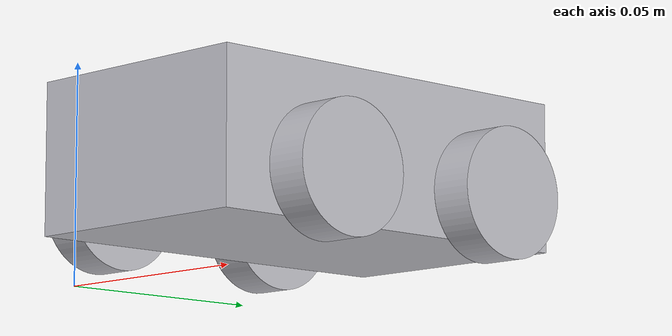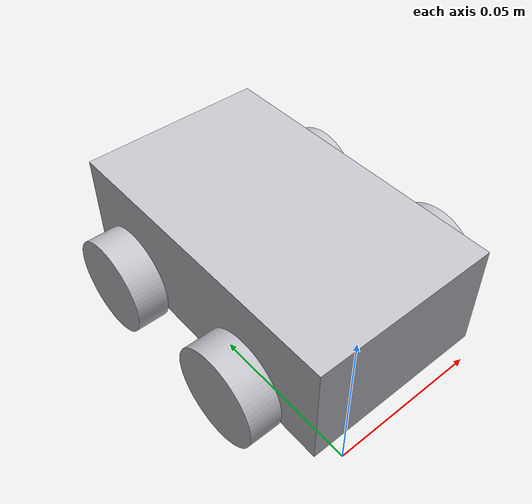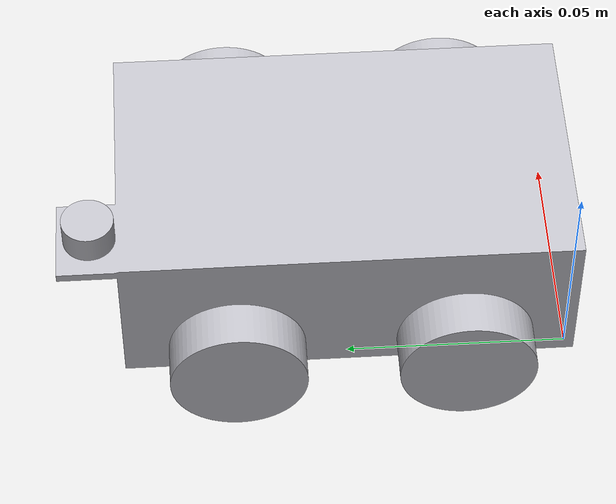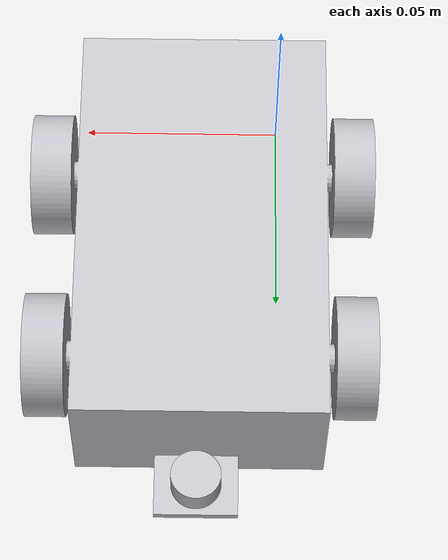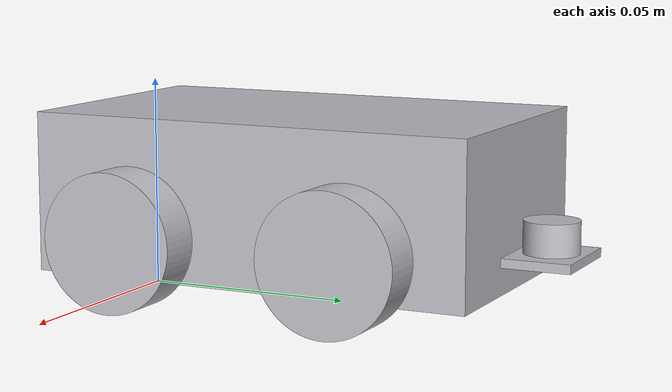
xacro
<?xml version="1.0" ?>
<robot name="AMR" xmlns:xacro="http://www.ros.org/wiki/xacro">

<xacro:include filename="$(find AMR_description)/urdf/materials.xacro" />
<xacro:include filename="$(find AMR_description)/urdf/AMR.trans" />
<xacro:include filename="$(find AMR_description)/urdf/AMR.gazebo" />
<link name="base_link">
  <inertial>
    <origin xyz="0.01897877889872416 0.0503794465577817 0.029670984969818247" rpy="0 0 0"/>
    <mass value="1.6562310340355082"/>
    <inertia ixx="0.00156" iyy="0.000667" izz="0.001889" ixy="-0.0" iyz="3e-06" ixz="0.0"/>
  </inertial>
  <visual>
    <origin xyz="0 0 0" rpy="0 0 0"/>
    <geometry>
      <mesh filename="package://AMR_description/meshes/base_link.stl" scale="0.001 0.001 0.001"/>
    </geometry>
    <material name="silver"/>
  </visual>
  <collision>
    <origin xyz="0 0 0" rpy="0 0 0"/>
    <geometry>
      <mesh filename="package://AMR_description/meshes/base_link.stl" scale="0.001 0.001 0.001"/>
    </geometry>
  </collision>
</link>

<link name="wheel_lf_1">
  <inertial>
    <origin xyz="0.004999938065343601 -7.229582901779885e-08 -4.7475483102785154e-07" rpy="0 0 0"/>
    <mass value="0.0554883802440297"/>
    <inertia ixx="6e-06" iyy="4e-06" izz="4e-06" ixy="0.0" iyz="0.0" ixz="0.0"/>
  </inertial>
  <visual>
    <origin xyz="-0.051477 -0.075216 -0.022215" rpy="0 0 0"/>
    <geometry>
      <mesh filename="package://AMR_description/meshes/wheel_lf_1.stl" scale="0.001 0.001 0.001"/>
    </geometry>
    <material name="silver"/>
  </visual>
  <collision>
    <origin xyz="-0.051477 -0.075216 -0.022215" rpy="0 0 0"/>
    <geometry>
      <mesh filename="package://AMR_description/meshes/wheel_lf_1.stl" scale="0.001 0.001 0.001"/>
    </geometry>
  </collision>
</link>

<link name="wheel_rf_1">
  <inertial>
    <origin xyz="-0.0050000619346564044 -7.229582901779885e-08 -4.74754831031321e-07" rpy="0 0 0"/>
    <mass value="0.05548838024402973"/>
    <inertia ixx="6e-06" iyy="4e-06" izz="4e-06" ixy="-0.0" iyz="0.0" ixz="-0.0"/>
  </inertial>
  <visual>
    <origin xyz="0.013523 -0.075216 -0.022215" rpy="0 0 0"/>
    <geometry>
      <mesh filename="package://AMR_description/meshes/wheel_rf_1.stl" scale="0.001 0.001 0.001"/>
    </geometry>
    <material name="silver"/>
  </visual>
  <collision>
    <origin xyz="0.013523 -0.075216 -0.022215" rpy="0 0 0"/>
    <geometry>
      <mesh filename="package://AMR_description/meshes/wheel_rf_1.stl" scale="0.001 0.001 0.001"/>
    </geometry>
  </collision>
</link>

<link name="wheel_lb_1">
  <inertial>
    <origin xyz="0.004999938065343601 -7.229582901779885e-08 -4.7475483102785154e-07" rpy="0 0 0"/>
    <mass value="0.0554883802440297"/>
    <inertia ixx="6e-06" iyy="4e-06" izz="4e-06" ixy="0.0" iyz="0.0" ixz="0.0"/>
  </inertial>
  <visual>
    <origin xyz="-0.051477 -0.025216 -0.022215" rpy="0 0 0"/>
    <geometry>
      <mesh filename="package://AMR_description/meshes/wheel_lb_1.stl" scale="0.001 0.001 0.001"/>
    </geometry>
    <material name="silver"/>
  </visual>
  <collision>
    <origin xyz="-0.051477 -0.025216 -0.022215" rpy="0 0 0"/>
    <geometry>
      <mesh filename="package://AMR_description/meshes/wheel_lb_1.stl" scale="0.001 0.001 0.001"/>
    </geometry>
  </collision>
</link>

<link name="wheel_rb_1">
  <inertial>
    <origin xyz="-0.0050000619346564044 -7.229582902473775e-08 -4.7475483103479044e-07" rpy="0 0 0"/>
    <mass value="0.05548838024402973"/>
    <inertia ixx="6e-06" iyy="4e-06" izz="4e-06" ixy="0.0" iyz="0.0" ixz="-0.0"/>
  </inertial>
  <visual>
    <origin xyz="0.013523 -0.025216 -0.022215" rpy="0 0 0"/>
    <geometry>
      <mesh filename="package://AMR_description/meshes/wheel_rb_1.stl" scale="0.001 0.001 0.001"/>
    </geometry>
    <material name="silver"/>
  </visual>
  <collision>
    <origin xyz="0.013523 -0.025216 -0.022215" rpy="0 0 0"/>
    <geometry>
      <mesh filename="package://AMR_description/meshes/wheel_rb_1.stl" scale="0.001 0.001 0.001"/>
    </geometry>
  </collision>
</link>

<link name="lidar_1_1">
  <inertial>
    <origin xyz="2.513081011901175e-07 -7.229582900392106e-08 0.003499525245168972" rpy="0 0 0"/>
    <mass value="0.006214698587331331"/>
    <inertia ixx="0.0" iyy="0.0" izz="0.0" ixy="0.0" iyz="0.0" ixz="0.0"/>
  </inertial>
  <visual>
    <origin xyz="-0.019624 -0.107716 -0.020215" rpy="0 0 0"/>
    <geometry>
      <mesh filename="package://AMR_description/meshes/lidar_1_1.stl" scale="0.001 0.001 0.001"/>
    </geometry>
    <material name="silver"/>
  </visual>
  <collision>
    <origin xyz="-0.019624 -0.107716 -0.020215" rpy="0 0 0"/>
    <geometry>
      <mesh filename="package://AMR_description/meshes/lidar_1_1.stl" scale="0.001 0.001 0.001"/>
    </geometry>
  </collision>
</link>

<joint name="Rev1" type="continuous">
  <origin xyz="0.051477 0.075216 0.022215" rpy="0 0 0"/>
  <parent link="base_link"/>
  <child link="wheel_lf_1"/>
  <axis xyz="1.0 0.0 0.0"/>
</joint>

<joint name="Rev2" type="continuous">
  <origin xyz="-0.013523 0.075216 0.022215" rpy="0 0 0"/>
  <parent link="base_link"/>
  <child link="wheel_rf_1"/>
  <axis xyz="-1.0 0.0 0.0"/>
</joint>

<joint name="Rev3" type="continuous">
  <origin xyz="0.051477 0.025216 0.022215" rpy="0 0 0"/>
  <parent link="base_link"/>
  <child link="wheel_lb_1"/>
  <axis xyz="1.0 0.0 0.0"/>
</joint>

<joint name="Rev4" type="continuous">
  <origin xyz="-0.013523 0.025216 0.022215" rpy="0 0 0"/>
  <parent link="base_link"/>
  <child link="wheel_rb_1"/>
  <axis xyz="-1.0 0.0 0.0"/>
</joint>

<joint name="Rigid5" type="fixed">
  <origin xyz="0.019624 0.107716 0.020215" rpy="0 0 0"/>
  <parent link="base_link"/>
  <child link="lidar_1_1"/>
</joint>

</robot>

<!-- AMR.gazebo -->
<robot name="AMR" xmlns:xacro="http://www.ros.org/wiki/xacro" >

<xacro:property name="body_color" value="Gazebo/Silver" />

<gazebo>
  <plugin name="control" filename="libgazebo_ros_control.so"/>
</gazebo>
<gazebo reference="base_link">
  <material>${body_color}</material>
  <mu1>0.2</mu1>
  <mu2>0.2</mu2>
  <selfCollide>true</selfCollide>
  <gravity>true</gravity>
</gazebo>

<gazebo reference="wheel_lf_1">
  <material>${body_color}</material>
  <mu1>0.2</mu1>
  <mu2>0.2</mu2>
  <selfCollide>true</selfCollide>
</gazebo>

<gazebo reference="wheel_rf_1">
  <material>${body_color}</material>
  <mu1>0.2</mu1>
  <mu2>0.2</mu2>
  <selfCollide>true</selfCollide>
</gazebo>

<gazebo reference="wheel_lb_1">
  <material>${body_color}</material>
  <mu1>0.2</mu1>
  <mu2>0.2</mu2>
  <selfCollide>true</selfCollide>
</gazebo>

<gazebo reference="wheel_rb_1">
  <material>${body_color}</material>
  <mu1>0.2</mu1>
  <mu2>0.2</mu2>
  <selfCollide>true</selfCollide>
</gazebo>

<gazebo reference="lidar_1_1">
  <material>${body_color}</material>
  <mu1>0.2</mu1>
  <mu2>0.2</mu2>
  <selfCollide>true</selfCollide>
</gazebo>

<!-- hokuyo -->
  <gazebo reference="lidar_1_1">
     <sensor type="ray" name="head_hokuyo_sensor">
      <pose>0 0 0 0 0 0</pose>
      <visualize>false</visualize>
      <update_rate>40</update_rate>
      <ray>
        <scan>
          <horizontal>
            <samples>720</samples>
            <resolution>1</resolution>
            <min_angle>-1.570796</min_angle>
            <max_angle>1.570796</max_angle>
          </horizontal>
        </scan>
        <range>
          <min>0.10</min>
          <max>30.0</max>
          <resolution>0.01</resolution>
        </range>
        <noise>
          <type>gaussian</type>
          <mean>0.0</mean>
          <stddev>0.01</stddev>
        </noise>
      </ray>
           <plugin name="gazebo_ros_head_hokuyo_controller" filename="libgazebo_ros_laser.so">
        <topicName>/scan</topicName>
        <frameName>lidar_1_1</frameName>
      </plugin>
    </sensor>
  </gazebo>
    <gazebo>
    <plugin name="skid_steer_drive_controller" filename="libgazebo_ros_skid_steer_drive.so">
      <updateRate>100.0</updateRate>
      <robotNamespace>/</robotNamespace>
      <leftFrontJoint>Rev1</leftFrontJoint>
      <rightFrontJoint>Rev2</rightFrontJoint>
      <leftRearJoint>Rev3</leftRearJoint>
      <rightRearJoint>Rev4</rightRearJoint>
      <wheelSeparation>0.5</wheelSeparation>
      <wheelDiameter>0.3</wheelDiameter>
      <robotBaseFrame>base_link</robotBaseFrame>
      <torque>200</torque>
      <MaxForce>5.0</MaxForce>
      <commandTopic>cmd_vel</commandTopic>
      <odometryTopic>odom</odometryTopic>
      <odometryFrame>odom</odometryFrame>
      <broadcastTF>true</broadcastTF>
      <covariance_x>0.001</covariance_x>
      <covariance_y>0.001</covariance_y>
      <covariance_yaw>0.01</covariance_yaw>
    </plugin>
  </gazebo>

</robot>
